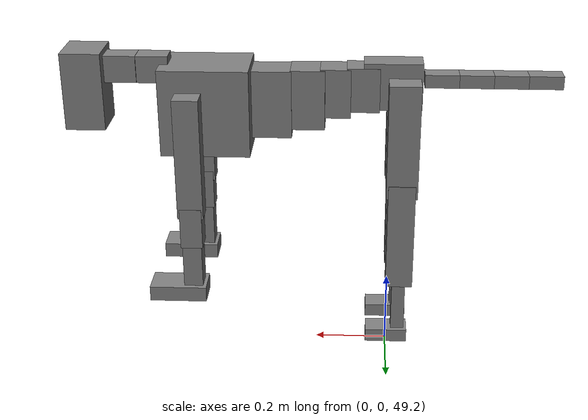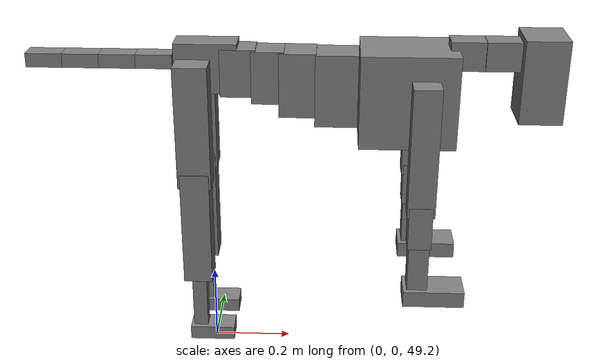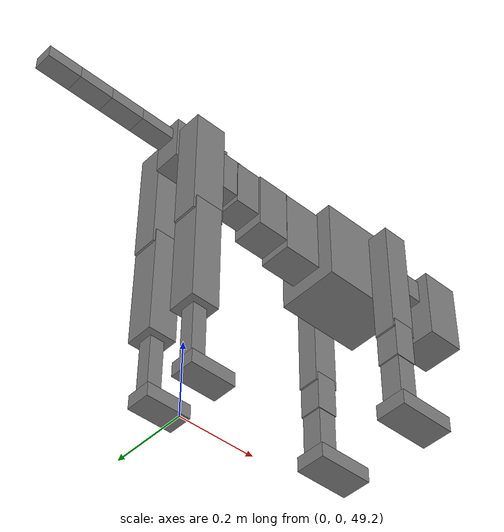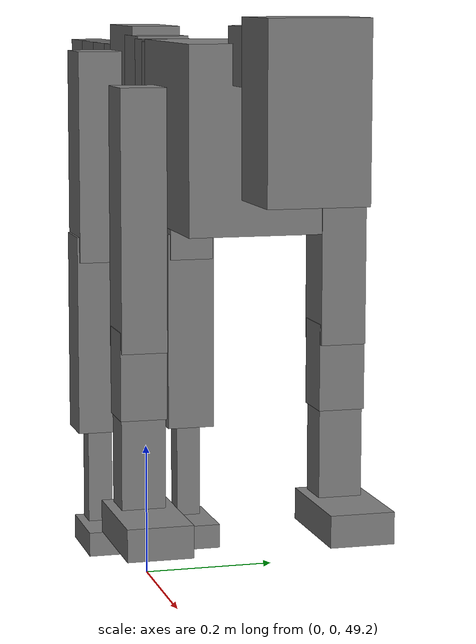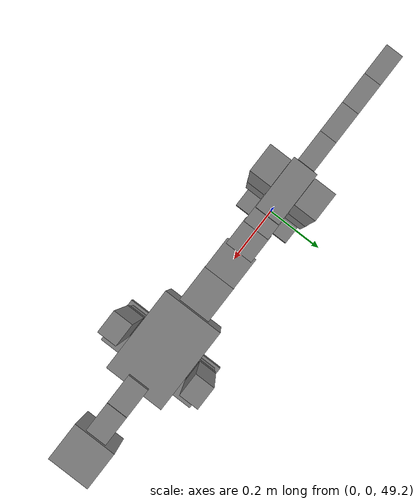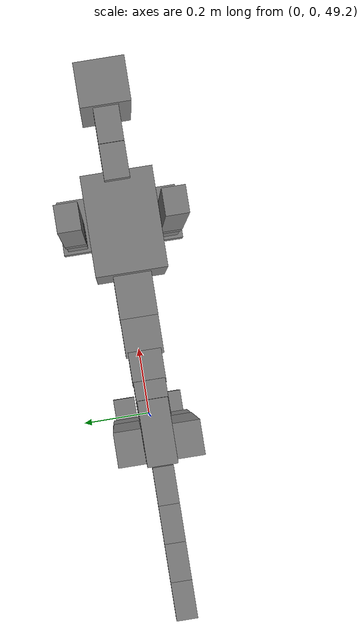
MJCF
<mujoco model="dog">

    <default>
        <joint armature="0.02" stiffness="1" damping="0.2" limited="true"/>
        <geom condim="3" friction="1 0.05 0.05" margin="0.01"/>
        <motor ctrllimited="true" ctrlrange="-1.0 1.0" forcelimited="true" gear="50"/>
    </default>

    <compiler inertiafromgeom="true" angle="radian"/>

    <option timestep="0.016" iterations="50" tolerance="1e-10" solver="Newton" jacobian="dense" cone="pyramidal"/>

    <size nconmax="20000" njmax="60000" nstack="5000000"/>
    <visual>
        <map force="0.1" zfar="30"/>
        <rgba haze="0.15 0.25 0.35 1"/>
        <quality shadowsize="2048"/>
        <global offwidth="800" offheight="800"/>
    </visual>

    <asset>
        <texture type="skybox" builtin="gradient" rgb1="0.3 0.5 0.7" rgb2="0 0 0" width="512" height="512"/>
        <texture name="texplane" type="2d" builtin="checker" rgb1=".2 .3 .4" rgb2=".1 0.15 0.2" width="512" height="512"
                 mark="cross" markrgb=".8 .8 .8"/>
        <texture name="texgeom" type="cube" builtin="flat" mark="cross" width="127" height="1278" rgb1="0.8 0.6 0.4"
                 rgb2="0.8 0.6 0.4" markrgb="1 1 1" random="0.01"/>

        <material name="matplane" reflectance="0.3" texture="texplane" texrepeat="1 1" texuniform="true"/>
        <material name="matgeom" texture="texgeom" texuniform="true" rgba="0.8 0.6 .4 1"/>
    </asset>

    <worldbody>
        <geom name="floor" pos="0 0 0" size="0 0 .25" type="plane" material="matplane" condim="3"/>

        <light directional="false" diffuse=".2 .2 .2" specular="0 0 0" pos="0 0 5" dir="0 0 -1" castshadow="false"/>
        <light mode="targetbodycom" target="torso" directional="false" diffuse=".8 .8 .8" specular="0.3 0.3 0.3"
               pos="0 0 4.0" dir="0 0 -1"/>

        <body name="root" pos="0 0 50">
            <freejoint name="root_1"/>
            <geom type="box" pos="0 0 -0.02" size="0.0774  0.0358  0.063" density="2030"/>

            <body name="spine1" pos="0.054 0 0">
                <joint name="spine1_y" axis="0 1 0" range="0 0.7" limited="true"/>
                <geom type="box" pos="0.02375 0 -0.03" size="0.04375  0.0375  0.05985" density="2030"/>

                <body name="spine2" pos="0.0612 0 0">
                    <joint name="spine2_y" axis="0 1 0" range="-0.15 0.15" limited="true"/>
                    <geom type="box" pos="0.03555  0  -0.04" size="0.04055  0.039  0.06615" density="2030"/>

                    <body name="spine3" pos="0.0730 0 0">
                        <joint name="spine3_y" axis="0 1 0" range="-0.15 0.15" limited="true"/>
                        <geom type="box" pos="0.03555  0  -0.057" size="0.04555  0.0445  0.081" density="2030"/>

                        <body name="spine4" pos="0.0780 0 0">
                            <joint name="spine4_y" axis="0 1 0" range="-0.15 0.15" limited="true"/>
                            <geom type="box" pos="0.05265  0  -0.07" size="0.05265  0.045  0.09135" density="2030"/>

                            <body name="torso" pos="0.1082 0 0">
                                <joint name="torso_y" axis="0 1 0" range="-0.15 0.15" limited="true"/>
                                <geom type="box" pos="0.11925  0  -0.085" size="0.11925  0.085  0.11745"
                                      density="2030"/>

                                <body name="neck1" pos="0.2160  0   0.0180">
                                    <joint name="neck1_y" axis="0 1 0" range="-1.2  -1" limited="true"/>
                                    <geom type="box" pos="0.0423  0  0" size="0.0423  0.03  0.036" density="2325"/>

                                    <body name="neck2" pos="0.0853  0  0">
                                        <joint name="neck2_y" axis="0 1 0" range="0.1  0" limited="true"/>
                                        <geom type="box" pos="0.0423  0  0" size="0.0423  0.03  0.036" density="2325"/>

                                        <body name="head" pos="0.0853  0  0">
                                            <joint name="head_y" axis="0 1 0" range="-0.3  -0.2" limited="true"/>
                                            <geom type="box" pos="0.0531  0  -0.055" size="0.0531  0.06  0.1044"
                                                  density="4030"/>

                                        </body>
                                    </body>
                                </body>

                                <body name="front_shoulder" pos="0.156  0   -0.0480">
                                    <joint name="front_shoulder_y" axis="0 1 0" range="-1 1.5" limited="true"/>
                                    <geom type="box" pos="0 0.13 -0.1385" size="0.0341  0.0292  0.1651" density="1158"/>
                                    <geom type="box" pos="0 -0.13 -0.1385" size="0.0341  0.0292  0.1651"
                                          density="1158"/>

                                    <body name="front_elbow" pos="0  0  -0.2770">
                                        <joint name="front_elbow_y" axis="0 1 0" range="-2 0" limited="true"/>
                                        <geom type="box" pos="0 0.13 -0.0562" size="0.0293  0.0299  0.0562"
                                              density="1081"/>
                                        <geom type="box" pos="0 -0.13 -0.0562" size="0.0293  0.0299  0.0562"
                                              density="1081"/>

                                        <body name="front_wrist" pos="0  0  -0.1125">
                                            <joint name="front_wrist_y" axis="0 1 0" range="-0.2 0" limited="true"/>
                                            <geom type="box" pos="0 0.13 -0.0650" size="0.0256  0.0284  0.0782"
                                                  density="1664"/>
                                            <geom type="box" pos="0 -0.13 -0.0650" size="0.0256  0.0284  0.0782"
                                                  density="1664"/>

                                            <body name="front_finger_end" pos="0  0  -0.1301">
                                                <joint name="front_finger_y" axis="0 1 0" range="-0.4 1"
                                                       limited="true"/>
                                                <geom type="box" pos="0.0419  0.13  -0.0057"
                                                      size="0.0767  0.0419  0.0207" density="1515"/>
                                                <geom type="box" pos="0.0419  -0.13  -0.0057"
                                                      size="0.0767  0.0419  0.0207" density="1515"/>

                                            </body>

                                        </body>
                                    </body>
                                </body>

                            </body>
                        </body>
                    </body>
                </body>
            </body>

            <body name="back_hip" pos="-0.03 0 -0.018">
                <joint name="back_hip_y" axis="0 1 0" range="-1.5 0.3" limited="true"/>
                <geom type="box" pos="0 0.07 -0.1350" size="0.0419  0.0329  0.1578" density="1154"/>
                <geom type="box" pos="0 -0.07 -0.1350" size="0.0419  0.0329  0.1578" density="1154"/>

                <body name="back_knee" pos="0  0  -0.2701">
                    <joint name="back_knee_y" axis="0 1 0" range="0 2.8" limited="true"/>
                    <geom type="box" pos="0 0.07 -0.1349" size="0.0365  0.0360  0.1505" density="1227"/>
                    <geom type="box" pos="0 -0.07 -0.1349" size="0.0365  0.0360  0.1505" density="1227"/>

                    <body name="back_ankle" pos="0  0  -0.2698">
                        <joint name="back_ankle_y" axis="0 1 0" range="-2.2 0" limited="true"/>
                        <geom type="box" pos="0 0.07 -0.0865" size="0.0184  0.0184  0.0977" density="1284"/>
                        <geom type="box" pos="0 -0.07 -0.0865" size="0.0184  0.0184  0.0977" density="1284"/>

                        <body name="back_toe_end" pos="0  0  -0.1729">
                            <joint name="back_toe_y" axis="0 1 0" range="-0.4 1" limited="true"/>
                            <geom type="box" pos="0.0315  0.07  -0.0031" size="0.0577  0.0315  0.0181" density="1515"/>
                            <geom type="box" pos="0.0315  -0.07  -0.0031" size="0.0577  0.0315  0.0181" density="1515"/>

                        </body>
                    </body>
                </body>
            </body>

            <body name="tail1" pos="-0.074 0 -0.006">
                <joint name="tail1_y" axis="0 1 0" range="-0.2 0.2" limited="true"/>
                <geom type="box" pos="-0.0536  0  0" size="0.045  0.025  0.0175" density="1587"/>

                <body name="tail2" pos="-0.09 0 0">
                    <joint name="tail2_y" axis="0 1 0" range="-0.2 0.2" limited="true"/>
                    <geom type="box" pos="-0.0536  0  0" size="0.045  0.025  0.0175" density="1587"/>

                    <body name="tail3" pos="-0.09 0 0">
                        <joint name="tail3_y" axis="0 1 0" range="-0.2 0.2" limited="true"/>
                        <geom type="box" pos="-0.0536  0  0" size="0.045  0.025  0.0175" density="1587"/>

                        <body name="tail4" pos="-0.09 0 0">
                            <joint name="tail4_y" axis="0 1 0" range="-0.2 0.2" limited="true"/>
                            <geom type="box" pos="-0.0536  0  0" size="0.045  0.025  0.0175" density="1587"/>

                        </body>
                    </body>
                </body>
            </body>
        </body>
    </worldbody>

    <actuator>
        <motor joint="spine1_y" forcerange="-150 150     "/>
        <motor joint="spine2_y" forcerange="-150 150     "/>
        <motor joint="spine3_y" forcerange="-150 150     "/>
        <motor joint="spine4_y" forcerange="-150 150     "/>
        <motor joint="torso_y" forcerange="-150 150     "/>
        <motor joint="neck1_y" forcerange="-100 100       "/>
        <motor joint="neck2_y" forcerange="-100 100       "/>
        <motor joint="head_y" forcerange="-150 150       "/>
        <motor joint="front_shoulder_y" forcerange="-101.23 193.28"/>
        <motor joint="front_elbow_y" forcerange="-161.64 155.92"/>
        <motor joint="front_wrist_y" forcerange="-145.49 81.99"/>
        <motor joint="front_finger_y" forcerange="-85.09 98.15"/>
        <motor joint="back_hip_y" forcerange="-364.21 274.21"/>
        <motor joint="back_knee_y" forcerange="-369.96 353.88"/>
        <motor joint="back_angle_y" forcerange="-68.03 127.08"/>
        <motor joint="back_toe_y" forcerange="-45.46 126.52"/>
        <motor joint="tail1_y" forcerange="-50 50     "/>
        <motor joint="tail2_y" forcerange="-50 50     "/>
        <motor joint="tail3_y" forcerange="-50 50     "/>
        <motor joint="tail4_y" forcerange="-50 50     "/>
    </actuator>
</mujoco>
